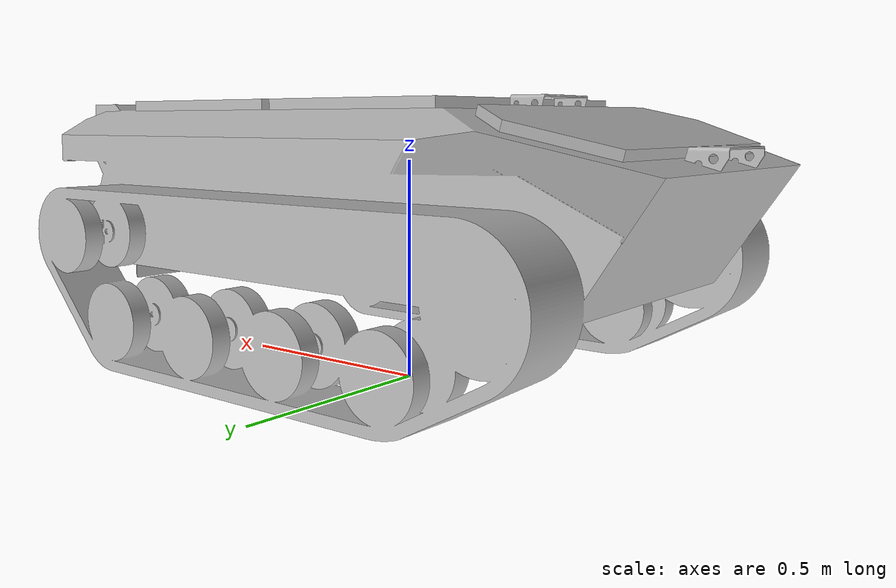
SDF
<?xml version="1.0"?>
<sdf version="1.9">
  <model name="rover_v2">
    <static>false</static><self_collide>false</self_collide><allow_auto_disable>false</allow_auto_disable>
    <link name="base_link">
      <pose>0 0 0.34 0 0 0</pose>
      <inertial>
        <!-- Estimated values: replace with measured mass / CoG before hardware correlation. -->
        <pose>0 0 -0.06 0 0 0</pose><mass>92</mass>
        <inertia><ixx>8.30</ixx><iyy>18.90</iyy><izz>23.40</izz><ixy>0</ixy><ixz>0</ixz><iyz>0</iyz></inertia>
      </inertial>
      <collision name="chassis_collision">
        <pose>0 0 0.02 0 0 0</pose><geometry><box><size>1.30 0.76 0.34</size></box></geometry>
        <surface><contact><collide_bitmask>0x01</collide_bitmask></contact></surface>
      </collision>
      <visual name="rover_1_1_visual">
        <!-- The OBJ is X-forward but exported upside-down. Roll pi restores Z-up. -->
        <pose>-0.49359 0 -0.05361 3.141592654 0 0</pose>
        <geometry><mesh><uri>model://rover_v2/meshes/rover-1-1.obj</uri><scale>0.0113633 0.0106383 0.0114068</scale></mesh></geometry>
      </visual>
      <sensor name="chassis_contact" type="contact">
        <always_on>true</always_on><update_rate>100</update_rate><topic>/model/rover_v2/contact/chassis</topic>
        <contact><collision>chassis_collision</collision></contact>
      </sensor>
      <sensor name="imu" type="imu">
        <always_on>true</always_on><update_rate>100</update_rate><topic>/model/rover_v2/imu</topic>
        <imu>
          <angular_velocity>
            <x><noise type="gaussian"><mean>0</mean><stddev>0.002</stddev><bias_mean>0.0002</bias_mean><bias_stddev>0.0001</bias_stddev></noise></x>
            <y><noise type="gaussian"><mean>0</mean><stddev>0.002</stddev><bias_mean>0.0002</bias_mean><bias_stddev>0.0001</bias_stddev></noise></y>
            <z><noise type="gaussian"><mean>0</mean><stddev>0.002</stddev><bias_mean>0.0002</bias_mean><bias_stddev>0.0001</bias_stddev></noise></z>
          </angular_velocity>
          <linear_acceleration>
            <x><noise type="gaussian"><mean>0</mean><stddev>0.03</stddev><bias_mean>0.01</bias_mean><bias_stddev>0.005</bias_stddev></noise></x>
            <y><noise type="gaussian"><mean>0</mean><stddev>0.03</stddev><bias_mean>0.01</bias_mean><bias_stddev>0.005</bias_stddev></noise></y>
            <z><noise type="gaussian"><mean>0</mean><stddev>0.03</stddev><bias_mean>0.01</bias_mean><bias_stddev>0.005</bias_stddev></noise></z>
          </linear_acceleration>
        </imu>
      </sensor>
      <visual name="zed_2i_body"><pose>0.70 0 0.20 0 0 0</pose><geometry><box><size>0.10 0.18 0.05</size></box></geometry></visual>
      <sensor name="zed_left" type="camera">
        <pose>0.74 0.06 0.20 0 0.139626 0</pose><always_on>true</always_on><update_rate>20</update_rate><topic>/zed2i/left/image</topic>
        <camera><camera_info_topic>/zed2i/left/camera_info</camera_info_topic><horizontal_fov>1.919862</horizontal_fov>
          <image><width>640</width><height>360</height><format>R8G8B8</format></image><clip><near>0.15</near><far>40</far></clip>
          <noise><type>gaussian</type><mean>0</mean><stddev>0.007</stddev></noise></camera>
      </sensor>
      <sensor name="zed_right" type="camera">
        <pose>0.74 -0.06 0.20 0 0.139626 0</pose><always_on>true</always_on><update_rate>20</update_rate><topic>/zed2i/right/image</topic>
        <camera><camera_info_topic>/zed2i/right/camera_info</camera_info_topic><horizontal_fov>1.919862</horizontal_fov>
          <image><width>640</width><height>360</height><format>R8G8B8</format></image><clip><near>0.15</near><far>40</far></clip>
          <noise><type>gaussian</type><mean>0</mean><stddev>0.007</stddev></noise></camera>
      </sensor>
      <sensor name="zed_depth" type="rgbd_camera">
        <pose>0.74 0.06 0.20 0 0.139626 0</pose><always_on>true</always_on><update_rate>20</update_rate><topic>/zed2i/rgbd</topic>
        <camera><camera_info_topic>/zed2i/rgbd/camera_info</camera_info_topic><horizontal_fov>1.919862</horizontal_fov>
          <image><width>640</width><height>360</height><format>R8G8B8</format></image><clip><near>0.15</near><far>40</far></clip>
          <noise><type>gaussian</type><mean>0</mean><stddev>0.01</stddev></noise></camera>
      </sensor>
    </link>

    <link name="left_track">
      <pose>0 0.43 0.17 0 0 0</pose><inertial><mass>4</mass><inertia><ixx>0.07</ixx><iyy>0.68</iyy><izz>0.68</izz></inertia></inertial>
      <collision name="track_collision"><geometry><box><size>1.34 0.15 0.24</size></box></geometry>
        <surface><friction><ode><mu>1.0</mu><mu2>0.65</mu2><fdir1>1 0 0</fdir1></ode></friction></surface><max_contacts>60</max_contacts></collision>
      <sensor name="left_track_contact" type="contact"><always_on>true</always_on><update_rate>100</update_rate>
        <topic>/model/rover_v2/contact/left_track</topic><contact><collision>track_collision</collision></contact></sensor>
    </link>
    <link name="right_track">
      <pose>0 -0.43 0.17 0 0 0</pose><inertial><mass>4</mass><inertia><ixx>0.07</ixx><iyy>0.68</iyy><izz>0.68</izz></inertia></inertial>
      <collision name="track_collision"><geometry><box><size>1.34 0.15 0.24</size></box></geometry>
        <surface><friction><ode><mu>1.0</mu><mu2>0.65</mu2><fdir1>1 0 0</fdir1></ode></friction></surface><max_contacts>60</max_contacts></collision>
      <sensor name="right_track_contact" type="contact"><always_on>true</always_on><update_rate>100</update_rate>
        <topic>/model/rover_v2/contact/right_track</topic><contact><collision>track_collision</collision></contact></sensor>
    </link>
    <joint name="left_track_joint" type="fixed"><parent>base_link</parent><child>left_track</child></joint>
    <joint name="right_track_joint" type="fixed"><parent>base_link</parent><child>right_track</child></joint>
    <plugin filename="gz-sim-tracked-vehicle-system" name="gz::sim::systems::TrackedVehicle">
      <left_track><link>left_track</link></left_track><right_track><link>right_track</link></right_track>
      <tracks_separation>0.86</tracks_separation><tracks_height>0.34</tracks_height><steering_efficiency>0.52</steering_efficiency>
      <topic>/model/rover_v2/cmd_vel</topic>
    </plugin>
    <plugin filename="gz-sim-track-controller-system" name="gz::sim::systems::TrackController"><link>left_track</link><min_velocity>-2</min_velocity><max_velocity>2</max_velocity></plugin>
    <plugin filename="gz-sim-track-controller-system" name="gz::sim::systems::TrackController"><link>right_track</link><min_velocity>-2</min_velocity><max_velocity>2</max_velocity></plugin>
    <plugin filename="gz-sim-odometry-publisher-system" name="gz::sim::systems::OdometryPublisher">
      <dimensions>3</dimensions><odom_publish_frequency>100</odom_publish_frequency><odom_topic>/model/rover_v2/ground_truth</odom_topic>
    </plugin>
  </model>
</sdf>
